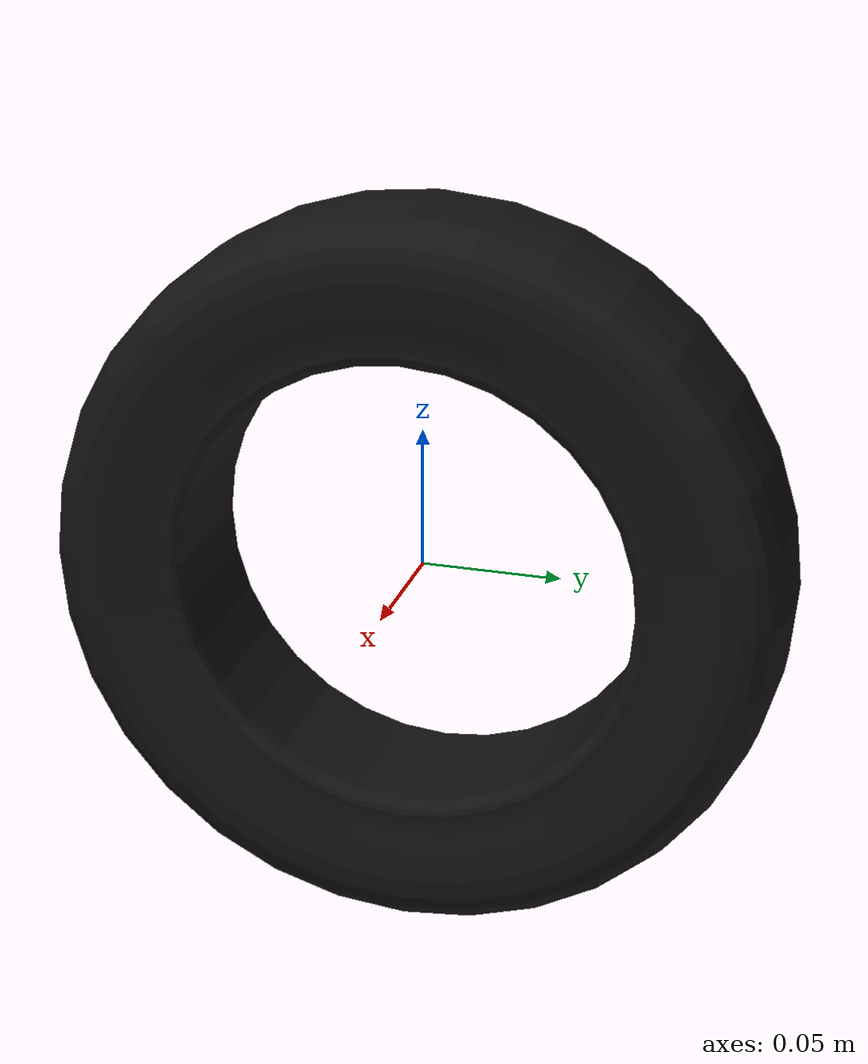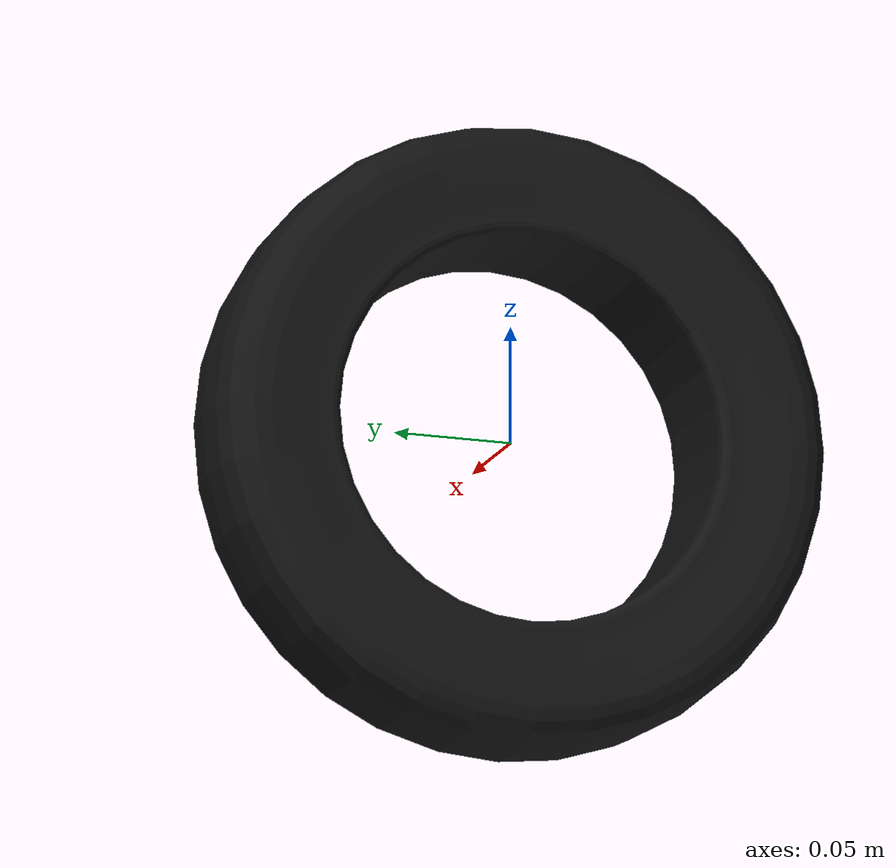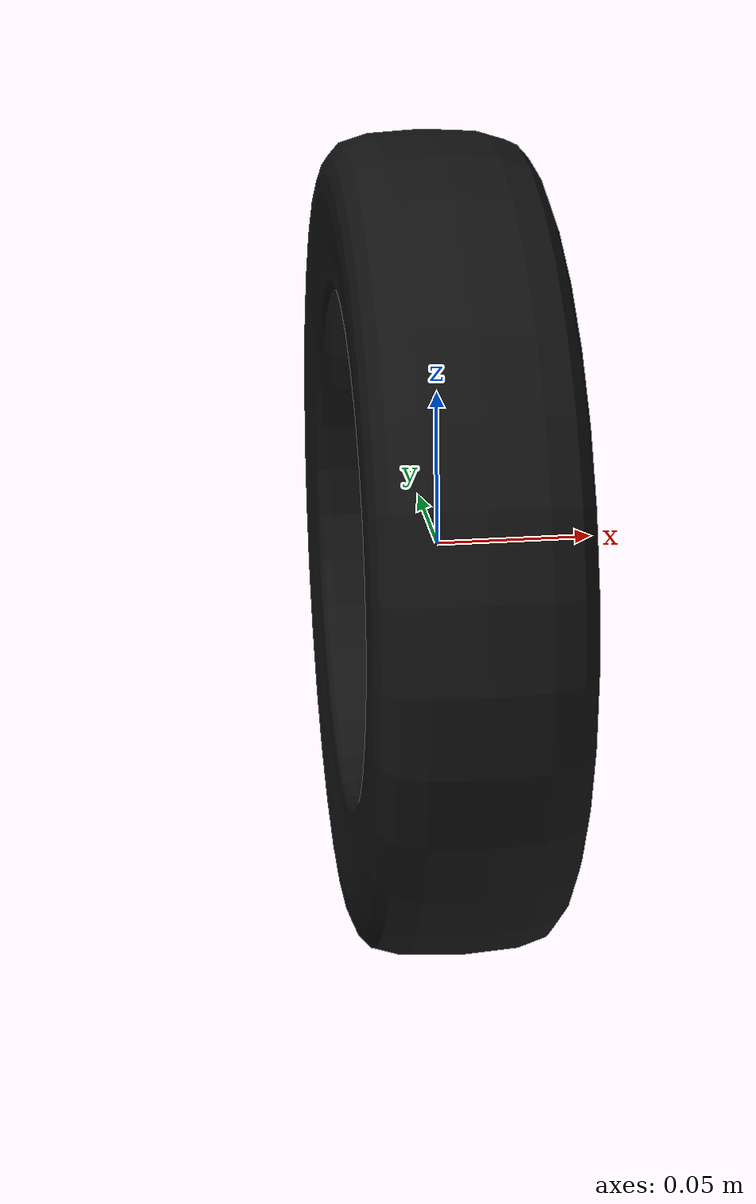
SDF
<?xml version="1.0" ?>
<sdf version="1.6">

  <model name="tire">
  <pose>0 0 0 0 0 0</pose>
  <static>true</static>
  <link name="link" >
    <visual name="visual">
      <pose>0 0 0 0 0 0</pose>
      <geometry>
        <mesh>
          <uri>model://tire/meshes/tire.dae</uri>
        </mesh>
      </geometry>
    </visual>

    <collision name="collision">
      <pose>0 0 0 0 0 0</pose>
      <geometry>
        <cylinder>
          <radius>0.32</radius>
          <length>0.17</length>
        </cylinder>
      </geometry>
    </collision>

    <inertial>
      <pose>0 0 0 0 0 0</pose>
      <mass>10.0</mass>
      <inertia>
        <ixx>0.28</ixx>
        <iyy>0.28</iyy>
        <izz>0.512</izz>
        <ixy>0</ixy>
        <ixz>0</ixz>
      </inertia>
    </inertial>

  </link>
  </model>
</sdf>
